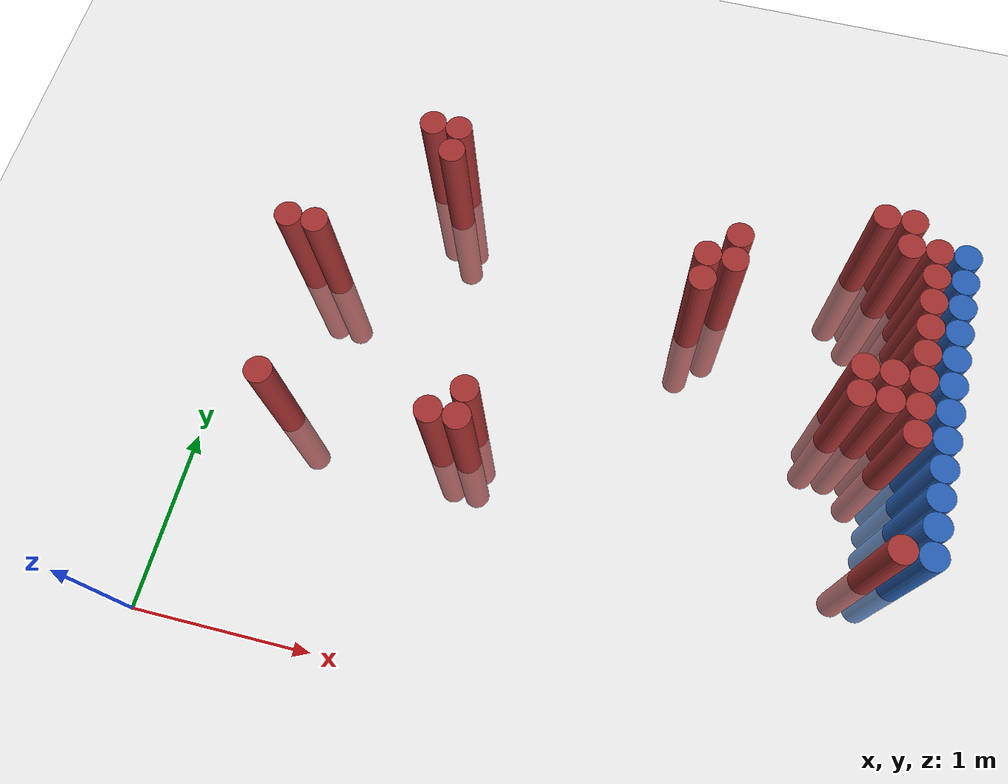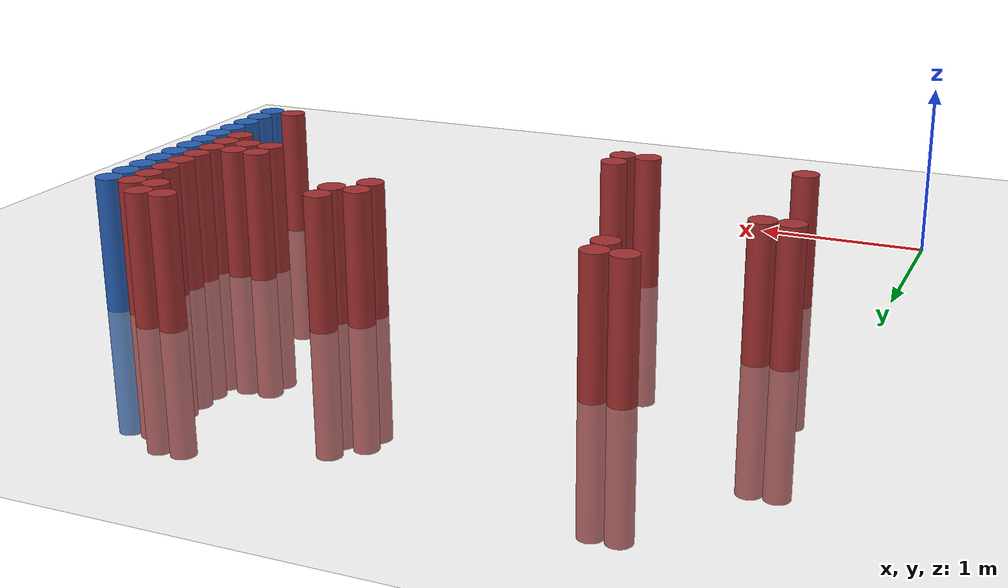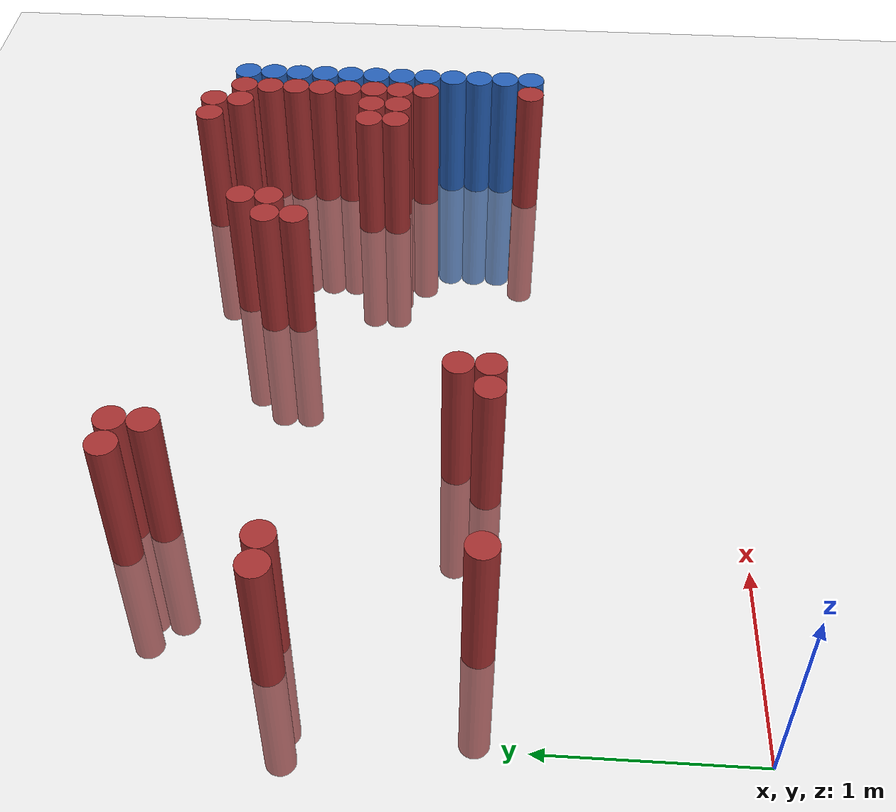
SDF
<sdf version="1.6">
 <world name="default">
  <model name="ground_plane">
   <static>1</static>
   <link name="link">
    <collision name="collision">
     <geometry><plane><normal>0 0 1</normal><size>100 100</size></plane></geometry>
     <surface><friction><ode><mu>100</mu><mu2>50</mu2></ode></friction></surface>
    </collision>
    <visual name="visual">
     <cast_shadows>0</cast_shadows>
     <geometry><plane><normal>0 0 1</normal><size>100 100</size></plane></geometry>
     <material>
      <script><uri>file://media/materials/scripts/gazebo.material</uri><name>Gazebo/Grey</name></script>
     </material>
    </visual>
   </link>
  </model>
  <model name="unit_cylinder_130">
   <static>1</static>
   <pose>3.925000 1.225000 0.000000 0.000000 0.000000 0.000000</pose>
   <link name="link">
    <inertial>
     <mass>1</mass>
     <inertia><ixx>0.145833</ixx><ixy>0</ixy><ixz>0</ixz><iyy>0.145833</iyy><iyz>0</iyz><izz>0.125</izz></inertia>
    </inertial>
    <collision name="collision">
     <geometry><cylinder><radius>0.075000</radius><length>1.5</length></cylinder></geometry>
    </collision>
    <visual name="visual">
     <geometry><cylinder><radius>0.075000</radius><length>1.5</length></cylinder></geometry>
     <material>
      <ambient>0.152000 0.379000 0.720000 1</ambient>
      <diffuse>0.152000 0.379000 0.720000 1</diffuse>
     </material>
     <material>
      <script><name>Gazebo/Grey</name><uri>file://media/materials/scripts/gazebo.material</uri></script>
     </material>
    </visual>
   </link>
  </model>
  <model name="unit_cylinder_132">
   <static>1</static>
   <pose>3.925000 1.375000 0.000000 0.000000 0.000000 0.000000</pose>
   <link name="link">
    <inertial>
     <mass>1</mass>
     <inertia><ixx>0.145833</ixx><ixy>0</ixy><ixz>0</ixz><iyy>0.145833</iyy><iyz>0</iyz><izz>0.125</izz></inertia>
    </inertial>
    <collision name="collision">
     <geometry><cylinder><radius>0.075000</radius><length>1.5</length></cylinder></geometry>
    </collision>
    <visual name="visual">
     <geometry><cylinder><radius>0.075000</radius><length>1.5</length></cylinder></geometry>
     <material>
      <ambient>0.152000 0.379000 0.720000 1</ambient>
      <diffuse>0.152000 0.379000 0.720000 1</diffuse>
     </material>
     <material>
      <script><name>Gazebo/Grey</name><uri>file://media/materials/scripts/gazebo.material</uri></script>
     </material>
    </visual>
   </link>
  </model>
  <model name="unit_cylinder_134">
   <static>1</static>
   <pose>3.925000 1.525000 0.000000 0.000000 0.000000 0.000000</pose>
   <link name="link">
    <inertial>
     <mass>1</mass>
     <inertia><ixx>0.145833</ixx><ixy>0</ixy><ixz>0</ixz><iyy>0.145833</iyy><iyz>0</iyz><izz>0.125</izz></inertia>
    </inertial>
    <collision name="collision">
     <geometry><cylinder><radius>0.075000</radius><length>1.5</length></cylinder></geometry>
    </collision>
    <visual name="visual">
     <geometry><cylinder><radius>0.075000</radius><length>1.5</length></cylinder></geometry>
     <material>
      <ambient>0.152000 0.379000 0.720000 1</ambient>
      <diffuse>0.152000 0.379000 0.720000 1</diffuse>
     </material>
     <material>
      <script><name>Gazebo/Grey</name><uri>file://media/materials/scripts/gazebo.material</uri></script>
     </material>
    </visual>
   </link>
  </model>
  <model name="unit_cylinder_136">
   <static>1</static>
   <pose>3.925000 1.675000 0.000000 0.000000 0.000000 0.000000</pose>
   <link name="link">
    <inertial>
     <mass>1</mass>
     <inertia><ixx>0.145833</ixx><ixy>0</ixy><ixz>0</ixz><iyy>0.145833</iyy><iyz>0</iyz><izz>0.125</izz></inertia>
    </inertial>
    <collision name="collision">
     <geometry><cylinder><radius>0.075000</radius><length>1.5</length></cylinder></geometry>
    </collision>
    <visual name="visual">
     <geometry><cylinder><radius>0.075000</radius><length>1.5</length></cylinder></geometry>
     <material>
      <ambient>0.152000 0.379000 0.720000 1</ambient>
      <diffuse>0.152000 0.379000 0.720000 1</diffuse>
     </material>
     <material>
      <script><name>Gazebo/Grey</name><uri>file://media/materials/scripts/gazebo.material</uri></script>
     </material>
    </visual>
   </link>
  </model>
  <model name="unit_cylinder_138">
   <static>1</static>
   <pose>3.925000 1.825000 0.000000 0.000000 0.000000 0.000000</pose>
   <link name="link">
    <inertial>
     <mass>1</mass>
     <inertia><ixx>0.145833</ixx><ixy>0</ixy><ixz>0</ixz><iyy>0.145833</iyy><iyz>0</iyz><izz>0.125</izz></inertia>
    </inertial>
    <collision name="collision">
     <geometry><cylinder><radius>0.075000</radius><length>1.5</length></cylinder></geometry>
    </collision>
    <visual name="visual">
     <geometry><cylinder><radius>0.075000</radius><length>1.5</length></cylinder></geometry>
     <material>
      <ambient>0.152000 0.379000 0.720000 1</ambient>
      <diffuse>0.152000 0.379000 0.720000 1</diffuse>
     </material>
     <material>
      <script><name>Gazebo/Grey</name><uri>file://media/materials/scripts/gazebo.material</uri></script>
     </material>
    </visual>
   </link>
  </model>
  <model name="unit_cylinder_140">
   <static>1</static>
   <pose>3.925000 1.975000 0.000000 0.000000 0.000000 0.000000</pose>
   <link name="link">
    <inertial>
     <mass>1</mass>
     <inertia><ixx>0.145833</ixx><ixy>0</ixy><ixz>0</ixz><iyy>0.145833</iyy><iyz>0</iyz><izz>0.125</izz></inertia>
    </inertial>
    <collision name="collision">
     <geometry><cylinder><radius>0.075000</radius><length>1.5</length></cylinder></geometry>
    </collision>
    <visual name="visual">
     <geometry><cylinder><radius>0.075000</radius><length>1.5</length></cylinder></geometry>
     <material>
      <ambient>0.152000 0.379000 0.720000 1</ambient>
      <diffuse>0.152000 0.379000 0.720000 1</diffuse>
     </material>
     <material>
      <script><name>Gazebo/Grey</name><uri>file://media/materials/scripts/gazebo.material</uri></script>
     </material>
    </visual>
   </link>
  </model>
  <model name="unit_cylinder_142">
   <static>1</static>
   <pose>3.925000 2.125000 0.000000 0.000000 0.000000 0.000000</pose>
   <link name="link">
    <inertial>
     <mass>1</mass>
     <inertia><ixx>0.145833</ixx><ixy>0</ixy><ixz>0</ixz><iyy>0.145833</iyy><iyz>0</iyz><izz>0.125</izz></inertia>
    </inertial>
    <collision name="collision">
     <geometry><cylinder><radius>0.075000</radius><length>1.5</length></cylinder></geometry>
    </collision>
    <visual name="visual">
     <geometry><cylinder><radius>0.075000</radius><length>1.5</length></cylinder></geometry>
     <material>
      <ambient>0.152000 0.379000 0.720000 1</ambient>
      <diffuse>0.152000 0.379000 0.720000 1</diffuse>
     </material>
     <material>
      <script><name>Gazebo/Grey</name><uri>file://media/materials/scripts/gazebo.material</uri></script>
     </material>
    </visual>
   </link>
  </model>
  <model name="unit_cylinder_144">
   <static>1</static>
   <pose>3.925000 2.275000 0.000000 0.000000 0.000000 0.000000</pose>
   <link name="link">
    <inertial>
     <mass>1</mass>
     <inertia><ixx>0.145833</ixx><ixy>0</ixy><ixz>0</ixz><iyy>0.145833</iyy><iyz>0</iyz><izz>0.125</izz></inertia>
    </inertial>
    <collision name="collision">
     <geometry><cylinder><radius>0.075000</radius><length>1.5</length></cylinder></geometry>
    </collision>
    <visual name="visual">
     <geometry><cylinder><radius>0.075000</radius><length>1.5</length></cylinder></geometry>
     <material>
      <ambient>0.152000 0.379000 0.720000 1</ambient>
      <diffuse>0.152000 0.379000 0.720000 1</diffuse>
     </material>
     <material>
      <script><name>Gazebo/Grey</name><uri>file://media/materials/scripts/gazebo.material</uri></script>
     </material>
    </visual>
   </link>
  </model>
  <model name="unit_cylinder_146">
   <static>1</static>
   <pose>3.925000 2.425000 0.000000 0.000000 0.000000 0.000000</pose>
   <link name="link">
    <inertial>
     <mass>1</mass>
     <inertia><ixx>0.145833</ixx><ixy>0</ixy><ixz>0</ixz><iyy>0.145833</iyy><iyz>0</iyz><izz>0.125</izz></inertia>
    </inertial>
    <collision name="collision">
     <geometry><cylinder><radius>0.075000</radius><length>1.5</length></cylinder></geometry>
    </collision>
    <visual name="visual">
     <geometry><cylinder><radius>0.075000</radius><length>1.5</length></cylinder></geometry>
     <material>
      <ambient>0.152000 0.379000 0.720000 1</ambient>
      <diffuse>0.152000 0.379000 0.720000 1</diffuse>
     </material>
     <material>
      <script><name>Gazebo/Grey</name><uri>file://media/materials/scripts/gazebo.material</uri></script>
     </material>
    </visual>
   </link>
  </model>
  <model name="unit_cylinder_148">
   <static>1</static>
   <pose>3.925000 2.575000 0.000000 0.000000 0.000000 0.000000</pose>
   <link name="link">
    <inertial>
     <mass>1</mass>
     <inertia><ixx>0.145833</ixx><ixy>0</ixy><ixz>0</ixz><iyy>0.145833</iyy><iyz>0</iyz><izz>0.125</izz></inertia>
    </inertial>
    <collision name="collision">
     <geometry><cylinder><radius>0.075000</radius><length>1.5</length></cylinder></geometry>
    </collision>
    <visual name="visual">
     <geometry><cylinder><radius>0.075000</radius><length>1.5</length></cylinder></geometry>
     <material>
      <ambient>0.152000 0.379000 0.720000 1</ambient>
      <diffuse>0.152000 0.379000 0.720000 1</diffuse>
     </material>
     <material>
      <script><name>Gazebo/Grey</name><uri>file://media/materials/scripts/gazebo.material</uri></script>
     </material>
    </visual>
   </link>
  </model>
  <model name="unit_cylinder_150">
   <static>1</static>
   <pose>3.925000 2.725000 0.000000 0.000000 0.000000 0.000000</pose>
   <link name="link">
    <inertial>
     <mass>1</mass>
     <inertia><ixx>0.145833</ixx><ixy>0</ixy><ixz>0</ixz><iyy>0.145833</iyy><iyz>0</iyz><izz>0.125</izz></inertia>
    </inertial>
    <collision name="collision">
     <geometry><cylinder><radius>0.075000</radius><length>1.5</length></cylinder></geometry>
    </collision>
    <visual name="visual">
     <geometry><cylinder><radius>0.075000</radius><length>1.5</length></cylinder></geometry>
     <material>
      <ambient>0.152000 0.379000 0.720000 1</ambient>
      <diffuse>0.152000 0.379000 0.720000 1</diffuse>
     </material>
     <material>
      <script><name>Gazebo/Grey</name><uri>file://media/materials/scripts/gazebo.material</uri></script>
     </material>
    </visual>
   </link>
  </model>
  <model name="unit_cylinder_371">
   <static>1</static>
   <pose>0.325000 2.125000 0.000000 0.000000 0.000000 0.000000</pose>
   <link name="link">
    <inertial>
     <mass>1</mass>
     <inertia><ixx>0.145833</ixx><ixy>0</ixy><ixz>0</ixz><iyy>0.145833</iyy><iyz>0</iyz><izz>0.125</izz></inertia>
    </inertial>
    <collision name="collision">
     <geometry><cylinder><radius>0.075000</radius><length>1.5</length></cylinder></geometry>
    </collision>
    <visual name="visual">
     <geometry><cylinder><radius>0.075000</radius><length>1.5</length></cylinder></geometry>
     <material>
      <ambient>0.648000 0.192000 0.192000 1</ambient>
      <diffuse>0.648000 0.192000 0.192000 1</diffuse>
     </material>
     <material>
      <script><name>Gazebo/Grey</name><uri>file://media/materials/scripts/gazebo.material</uri></script>
     </material>
    </visual>
   </link>
  </model>
  <model name="unit_cylinder_374">
   <static>1</static>
   <pose>0.475000 1.225000 0.000000 0.000000 0.000000 0.000000</pose>
   <link name="link">
    <inertial>
     <mass>1</mass>
     <inertia><ixx>0.145833</ixx><ixy>0</ixy><ixz>0</ixz><iyy>0.145833</iyy><iyz>0</iyz><izz>0.125</izz></inertia>
    </inertial>
    <collision name="collision">
     <geometry><cylinder><radius>0.075000</radius><length>1.5</length></cylinder></geometry>
    </collision>
    <visual name="visual">
     <geometry><cylinder><radius>0.075000</radius><length>1.5</length></cylinder></geometry>
     <material>
      <ambient>0.648000 0.192000 0.192000 1</ambient>
      <diffuse>0.648000 0.192000 0.192000 1</diffuse>
     </material>
     <material>
      <script><name>Gazebo/Grey</name><uri>file://media/materials/scripts/gazebo.material</uri></script>
     </material>
    </visual>
   </link>
  </model>
  <model name="unit_cylinder_375">
   <static>1</static>
   <pose>0.475000 2.125000 0.000000 0.000000 0.000000 0.000000</pose>
   <link name="link">
    <inertial>
     <mass>1</mass>
     <inertia><ixx>0.145833</ixx><ixy>0</ixy><ixz>0</ixz><iyy>0.145833</iyy><iyz>0</iyz><izz>0.125</izz></inertia>
    </inertial>
    <collision name="collision">
     <geometry><cylinder><radius>0.075000</radius><length>1.5</length></cylinder></geometry>
    </collision>
    <visual name="visual">
     <geometry><cylinder><radius>0.075000</radius><length>1.5</length></cylinder></geometry>
     <material>
      <ambient>0.648000 0.192000 0.192000 1</ambient>
      <diffuse>0.648000 0.192000 0.192000 1</diffuse>
     </material>
     <material>
      <script><name>Gazebo/Grey</name><uri>file://media/materials/scripts/gazebo.material</uri></script>
     </material>
    </visual>
   </link>
  </model>
  <model name="unit_cylinder_384">
   <static>1</static>
   <pose>0.925000 2.875000 0.000000 0.000000 0.000000 0.000000</pose>
   <link name="link">
    <inertial>
     <mass>1</mass>
     <inertia><ixx>0.145833</ixx><ixy>0</ixy><ixz>0</ixz><iyy>0.145833</iyy><iyz>0</iyz><izz>0.125</izz></inertia>
    </inertial>
    <collision name="collision">
     <geometry><cylinder><radius>0.075000</radius><length>1.5</length></cylinder></geometry>
    </collision>
    <visual name="visual">
     <geometry><cylinder><radius>0.075000</radius><length>1.5</length></cylinder></geometry>
     <material>
      <ambient>0.648000 0.192000 0.192000 1</ambient>
      <diffuse>0.648000 0.192000 0.192000 1</diffuse>
     </material>
     <material>
      <script><name>Gazebo/Grey</name><uri>file://media/materials/scripts/gazebo.material</uri></script>
     </material>
    </visual>
   </link>
  </model>
  <model name="unit_cylinder_392">
   <static>1</static>
   <pose>1.075000 2.725000 0.000000 0.000000 0.000000 0.000000</pose>
   <link name="link">
    <inertial>
     <mass>1</mass>
     <inertia><ixx>0.145833</ixx><ixy>0</ixy><ixz>0</ixz><iyy>0.145833</iyy><iyz>0</iyz><izz>0.125</izz></inertia>
    </inertial>
    <collision name="collision">
     <geometry><cylinder><radius>0.075000</radius><length>1.5</length></cylinder></geometry>
    </collision>
    <visual name="visual">
     <geometry><cylinder><radius>0.075000</radius><length>1.5</length></cylinder></geometry>
     <material>
      <ambient>0.648000 0.192000 0.192000 1</ambient>
      <diffuse>0.648000 0.192000 0.192000 1</diffuse>
     </material>
     <material>
      <script><name>Gazebo/Grey</name><uri>file://media/materials/scripts/gazebo.material</uri></script>
     </material>
    </visual>
   </link>
  </model>
  <model name="unit_cylinder_393">
   <static>1</static>
   <pose>1.075000 2.875000 0.000000 0.000000 0.000000 0.000000</pose>
   <link name="link">
    <inertial>
     <mass>1</mass>
     <inertia><ixx>0.145833</ixx><ixy>0</ixy><ixz>0</ixz><iyy>0.145833</iyy><iyz>0</iyz><izz>0.125</izz></inertia>
    </inertial>
    <collision name="collision">
     <geometry><cylinder><radius>0.075000</radius><length>1.5</length></cylinder></geometry>
    </collision>
    <visual name="visual">
     <geometry><cylinder><radius>0.075000</radius><length>1.5</length></cylinder></geometry>
     <material>
      <ambient>0.648000 0.192000 0.192000 1</ambient>
      <diffuse>0.648000 0.192000 0.192000 1</diffuse>
     </material>
     <material>
      <script><name>Gazebo/Grey</name><uri>file://media/materials/scripts/gazebo.material</uri></script>
     </material>
    </visual>
   </link>
  </model>
  <model name="unit_cylinder_402">
   <static>1</static>
   <pose>1.375000 1.225000 0.000000 0.000000 0.000000 0.000000</pose>
   <link name="link">
    <inertial>
     <mass>1</mass>
     <inertia><ixx>0.145833</ixx><ixy>0</ixy><ixz>0</ixz><iyy>0.145833</iyy><iyz>0</iyz><izz>0.125</izz></inertia>
    </inertial>
    <collision name="collision">
     <geometry><cylinder><radius>0.075000</radius><length>1.5</length></cylinder></geometry>
    </collision>
    <visual name="visual">
     <geometry><cylinder><radius>0.075000</radius><length>1.5</length></cylinder></geometry>
     <material>
      <ambient>0.648000 0.192000 0.192000 1</ambient>
      <diffuse>0.648000 0.192000 0.192000 1</diffuse>
     </material>
     <material>
      <script><name>Gazebo/Grey</name><uri>file://media/materials/scripts/gazebo.material</uri></script>
     </material>
    </visual>
   </link>
  </model>
  <model name="unit_cylinder_406">
   <static>1</static>
   <pose>1.525000 1.225000 0.000000 0.000000 0.000000 0.000000</pose>
   <link name="link">
    <inertial>
     <mass>1</mass>
     <inertia><ixx>0.145833</ixx><ixy>0</ixy><ixz>0</ixz><iyy>0.145833</iyy><iyz>0</iyz><izz>0.125</izz></inertia>
    </inertial>
    <collision name="collision">
     <geometry><cylinder><radius>0.075000</radius><length>1.5</length></cylinder></geometry>
    </collision>
    <visual name="visual">
     <geometry><cylinder><radius>0.075000</radius><length>1.5</length></cylinder></geometry>
     <material>
      <ambient>0.648000 0.192000 0.192000 1</ambient>
      <diffuse>0.648000 0.192000 0.192000 1</diffuse>
     </material>
     <material>
      <script><name>Gazebo/Grey</name><uri>file://media/materials/scripts/gazebo.material</uri></script>
     </material>
    </visual>
   </link>
  </model>
  <model name="unit_cylinder_407">
   <static>1</static>
   <pose>1.525000 1.375000 0.000000 0.000000 0.000000 0.000000</pose>
   <link name="link">
    <inertial>
     <mass>1</mass>
     <inertia><ixx>0.145833</ixx><ixy>0</ixy><ixz>0</ixz><iyy>0.145833</iyy><iyz>0</iyz><izz>0.125</izz></inertia>
    </inertial>
    <collision name="collision">
     <geometry><cylinder><radius>0.075000</radius><length>1.5</length></cylinder></geometry>
    </collision>
    <visual name="visual">
     <geometry><cylinder><radius>0.075000</radius><length>1.5</length></cylinder></geometry>
     <material>
      <ambient>0.648000 0.192000 0.192000 1</ambient>
      <diffuse>0.648000 0.192000 0.192000 1</diffuse>
     </material>
     <material>
      <script><name>Gazebo/Grey</name><uri>file://media/materials/scripts/gazebo.material</uri></script>
     </material>
    </visual>
   </link>
  </model>
  <model name="unit_cylinder_448">
   <static>1</static>
   <pose>2.575000 2.275000 0.000000 0.000000 0.000000 0.000000</pose>
   <link name="link">
    <inertial>
     <mass>1</mass>
     <inertia><ixx>0.145833</ixx><ixy>0</ixy><ixz>0</ixz><iyy>0.145833</iyy><iyz>0</iyz><izz>0.125</izz></inertia>
    </inertial>
    <collision name="collision">
     <geometry><cylinder><radius>0.075000</radius><length>1.5</length></cylinder></geometry>
    </collision>
    <visual name="visual">
     <geometry><cylinder><radius>0.075000</radius><length>1.5</length></cylinder></geometry>
     <material>
      <ambient>0.648000 0.192000 0.192000 1</ambient>
      <diffuse>0.648000 0.192000 0.192000 1</diffuse>
     </material>
     <material>
      <script><name>Gazebo/Grey</name><uri>file://media/materials/scripts/gazebo.material</uri></script>
     </material>
    </visual>
   </link>
  </model>
  <model name="unit_cylinder_449">
   <static>1</static>
   <pose>2.575000 2.425000 0.000000 0.000000 0.000000 0.000000</pose>
   <link name="link">
    <inertial>
     <mass>1</mass>
     <inertia><ixx>0.145833</ixx><ixy>0</ixy><ixz>0</ixz><iyy>0.145833</iyy><iyz>0</iyz><izz>0.125</izz></inertia>
    </inertial>
    <collision name="collision">
     <geometry><cylinder><radius>0.075000</radius><length>1.5</length></cylinder></geometry>
    </collision>
    <visual name="visual">
     <geometry><cylinder><radius>0.075000</radius><length>1.5</length></cylinder></geometry>
     <material>
      <ambient>0.648000 0.192000 0.192000 1</ambient>
      <diffuse>0.648000 0.192000 0.192000 1</diffuse>
     </material>
     <material>
      <script><name>Gazebo/Grey</name><uri>file://media/materials/scripts/gazebo.material</uri></script>
     </material>
    </visual>
   </link>
  </model>
  <model name="unit_cylinder_455">
   <static>1</static>
   <pose>2.725000 2.425000 0.000000 0.000000 0.000000 0.000000</pose>
   <link name="link">
    <inertial>
     <mass>1</mass>
     <inertia><ixx>0.145833</ixx><ixy>0</ixy><ixz>0</ixz><iyy>0.145833</iyy><iyz>0</iyz><izz>0.125</izz></inertia>
    </inertial>
    <collision name="collision">
     <geometry><cylinder><radius>0.075000</radius><length>1.5</length></cylinder></geometry>
    </collision>
    <visual name="visual">
     <geometry><cylinder><radius>0.075000</radius><length>1.5</length></cylinder></geometry>
     <material>
      <ambient>0.648000 0.192000 0.192000 1</ambient>
      <diffuse>0.648000 0.192000 0.192000 1</diffuse>
     </material>
     <material>
      <script><name>Gazebo/Grey</name><uri>file://media/materials/scripts/gazebo.material</uri></script>
     </material>
    </visual>
   </link>
  </model>
  <model name="unit_cylinder_456">
   <static>1</static>
   <pose>2.725000 2.575000 0.000000 0.000000 0.000000 0.000000</pose>
   <link name="link">
    <inertial>
     <mass>1</mass>
     <inertia><ixx>0.145833</ixx><ixy>0</ixy><ixz>0</ixz><iyy>0.145833</iyy><iyz>0</iyz><izz>0.125</izz></inertia>
    </inertial>
    <collision name="collision">
     <geometry><cylinder><radius>0.075000</radius><length>1.5</length></cylinder></geometry>
    </collision>
    <visual name="visual">
     <geometry><cylinder><radius>0.075000</radius><length>1.5</length></cylinder></geometry>
     <material>
      <ambient>0.648000 0.192000 0.192000 1</ambient>
      <diffuse>0.648000 0.192000 0.192000 1</diffuse>
     </material>
     <material>
      <script><name>Gazebo/Grey</name><uri>file://media/materials/scripts/gazebo.material</uri></script>
     </material>
    </visual>
   </link>
  </model>
  <model name="unit_cylinder_471">
   <static>1</static>
   <pose>3.475000 1.825000 0.000000 0.000000 0.000000 0.000000</pose>
   <link name="link">
    <inertial>
     <mass>1</mass>
     <inertia><ixx>0.145833</ixx><ixy>0</ixy><ixz>0</ixz><iyy>0.145833</iyy><iyz>0</iyz><izz>0.125</izz></inertia>
    </inertial>
    <collision name="collision">
     <geometry><cylinder><radius>0.075000</radius><length>1.5</length></cylinder></geometry>
    </collision>
    <visual name="visual">
     <geometry><cylinder><radius>0.075000</radius><length>1.5</length></cylinder></geometry>
     <material>
      <ambient>0.648000 0.192000 0.192000 1</ambient>
      <diffuse>0.648000 0.192000 0.192000 1</diffuse>
     </material>
     <material>
      <script><name>Gazebo/Grey</name><uri>file://media/materials/scripts/gazebo.material</uri></script>
     </material>
    </visual>
   </link>
  </model>
  <model name="unit_cylinder_472">
   <static>1</static>
   <pose>3.475000 1.975000 0.000000 0.000000 0.000000 0.000000</pose>
   <link name="link">
    <inertial>
     <mass>1</mass>
     <inertia><ixx>0.145833</ixx><ixy>0</ixy><ixz>0</ixz><iyy>0.145833</iyy><iyz>0</iyz><izz>0.125</izz></inertia>
    </inertial>
    <collision name="collision">
     <geometry><cylinder><radius>0.075000</radius><length>1.5</length></cylinder></geometry>
    </collision>
    <visual name="visual">
     <geometry><cylinder><radius>0.075000</radius><length>1.5</length></cylinder></geometry>
     <material>
      <ambient>0.648000 0.192000 0.192000 1</ambient>
      <diffuse>0.648000 0.192000 0.192000 1</diffuse>
     </material>
     <material>
      <script><name>Gazebo/Grey</name><uri>file://media/materials/scripts/gazebo.material</uri></script>
     </material>
    </visual>
   </link>
  </model>
  <model name="unit_cylinder_473">
   <static>1</static>
   <pose>3.475000 2.875000 0.000000 0.000000 0.000000 0.000000</pose>
   <link name="link">
    <inertial>
     <mass>1</mass>
     <inertia><ixx>0.145833</ixx><ixy>0</ixy><ixz>0</ixz><iyy>0.145833</iyy><iyz>0</iyz><izz>0.125</izz></inertia>
    </inertial>
    <collision name="collision">
     <geometry><cylinder><radius>0.075000</radius><length>1.5</length></cylinder></geometry>
    </collision>
    <visual name="visual">
     <geometry><cylinder><radius>0.075000</radius><length>1.5</length></cylinder></geometry>
     <material>
      <ambient>0.648000 0.192000 0.192000 1</ambient>
      <diffuse>0.648000 0.192000 0.192000 1</diffuse>
     </material>
     <material>
      <script><name>Gazebo/Grey</name><uri>file://media/materials/scripts/gazebo.material</uri></script>
     </material>
    </visual>
   </link>
  </model>
  <model name="unit_cylinder_480">
   <static>1</static>
   <pose>3.625000 1.825000 0.000000 0.000000 0.000000 0.000000</pose>
   <link name="link">
    <inertial>
     <mass>1</mass>
     <inertia><ixx>0.145833</ixx><ixy>0</ixy><ixz>0</ixz><iyy>0.145833</iyy><iyz>0</iyz><izz>0.125</izz></inertia>
    </inertial>
    <collision name="collision">
     <geometry><cylinder><radius>0.075000</radius><length>1.5</length></cylinder></geometry>
    </collision>
    <visual name="visual">
     <geometry><cylinder><radius>0.075000</radius><length>1.5</length></cylinder></geometry>
     <material>
      <ambient>0.648000 0.192000 0.192000 1</ambient>
      <diffuse>0.648000 0.192000 0.192000 1</diffuse>
     </material>
     <material>
      <script><name>Gazebo/Grey</name><uri>file://media/materials/scripts/gazebo.material</uri></script>
     </material>
    </visual>
   </link>
  </model>
  <model name="unit_cylinder_481">
   <static>1</static>
   <pose>3.625000 1.975000 0.000000 0.000000 0.000000 0.000000</pose>
   <link name="link">
    <inertial>
     <mass>1</mass>
     <inertia><ixx>0.145833</ixx><ixy>0</ixy><ixz>0</ixz><iyy>0.145833</iyy><iyz>0</iyz><izz>0.125</izz></inertia>
    </inertial>
    <collision name="collision">
     <geometry><cylinder><radius>0.075000</radius><length>1.5</length></cylinder></geometry>
    </collision>
    <visual name="visual">
     <geometry><cylinder><radius>0.075000</radius><length>1.5</length></cylinder></geometry>
     <material>
      <ambient>0.648000 0.192000 0.192000 1</ambient>
      <diffuse>0.648000 0.192000 0.192000 1</diffuse>
     </material>
     <material>
      <script><name>Gazebo/Grey</name><uri>file://media/materials/scripts/gazebo.material</uri></script>
     </material>
    </visual>
   </link>
  </model>
  <model name="unit_cylinder_482">
   <static>1</static>
   <pose>3.625000 2.725000 0.000000 0.000000 0.000000 0.000000</pose>
   <link name="link">
    <inertial>
     <mass>1</mass>
     <inertia><ixx>0.145833</ixx><ixy>0</ixy><ixz>0</ixz><iyy>0.145833</iyy><iyz>0</iyz><izz>0.125</izz></inertia>
    </inertial>
    <collision name="collision">
     <geometry><cylinder><radius>0.075000</radius><length>1.5</length></cylinder></geometry>
    </collision>
    <visual name="visual">
     <geometry><cylinder><radius>0.075000</radius><length>1.5</length></cylinder></geometry>
     <material>
      <ambient>0.648000 0.192000 0.192000 1</ambient>
      <diffuse>0.648000 0.192000 0.192000 1</diffuse>
     </material>
     <material>
      <script><name>Gazebo/Grey</name><uri>file://media/materials/scripts/gazebo.material</uri></script>
     </material>
    </visual>
   </link>
  </model>
  <model name="unit_cylinder_483">
   <static>1</static>
   <pose>3.625000 2.875000 0.000000 0.000000 0.000000 0.000000</pose>
   <link name="link">
    <inertial>
     <mass>1</mass>
     <inertia><ixx>0.145833</ixx><ixy>0</ixy><ixz>0</ixz><iyy>0.145833</iyy><iyz>0</iyz><izz>0.125</izz></inertia>
    </inertial>
    <collision name="collision">
     <geometry><cylinder><radius>0.075000</radius><length>1.5</length></cylinder></geometry>
    </collision>
    <visual name="visual">
     <geometry><cylinder><radius>0.075000</radius><length>1.5</length></cylinder></geometry>
     <material>
      <ambient>0.648000 0.192000 0.192000 1</ambient>
      <diffuse>0.648000 0.192000 0.192000 1</diffuse>
     </material>
     <material>
      <script><name>Gazebo/Grey</name><uri>file://media/materials/scripts/gazebo.material</uri></script>
     </material>
    </visual>
   </link>
  </model>
  <model name="unit_cylinder_499">
   <static>1</static>
   <pose>3.775000 1.075000 0.000000 0.000000 0.000000 0.000000</pose>
   <link name="link">
    <inertial>
     <mass>1</mass>
     <inertia><ixx>0.145833</ixx><ixy>0</ixy><ixz>0</ixz><iyy>0.145833</iyy><iyz>0</iyz><izz>0.125</izz></inertia>
    </inertial>
    <collision name="collision">
     <geometry><cylinder><radius>0.075000</radius><length>1.5</length></cylinder></geometry>
    </collision>
    <visual name="visual">
     <geometry><cylinder><radius>0.075000</radius><length>1.5</length></cylinder></geometry>
     <material>
      <ambient>0.648000 0.192000 0.192000 1</ambient>
      <diffuse>0.648000 0.192000 0.192000 1</diffuse>
     </material>
     <material>
      <script><name>Gazebo/Grey</name><uri>file://media/materials/scripts/gazebo.material</uri></script>
     </material>
    </visual>
   </link>
  </model>
  <model name="unit_cylinder_500">
   <static>1</static>
   <pose>3.775000 1.675000 0.000000 0.000000 0.000000 0.000000</pose>
   <link name="link">
    <inertial>
     <mass>1</mass>
     <inertia><ixx>0.145833</ixx><ixy>0</ixy><ixz>0</ixz><iyy>0.145833</iyy><iyz>0</iyz><izz>0.125</izz></inertia>
    </inertial>
    <collision name="collision">
     <geometry><cylinder><radius>0.075000</radius><length>1.5</length></cylinder></geometry>
    </collision>
    <visual name="visual">
     <geometry><cylinder><radius>0.075000</radius><length>1.5</length></cylinder></geometry>
     <material>
      <ambient>0.648000 0.192000 0.192000 1</ambient>
      <diffuse>0.648000 0.192000 0.192000 1</diffuse>
     </material>
     <material>
      <script><name>Gazebo/Grey</name><uri>file://media/materials/scripts/gazebo.material</uri></script>
     </material>
    </visual>
   </link>
  </model>
  <model name="unit_cylinder_501">
   <static>1</static>
   <pose>3.775000 1.825000 0.000000 0.000000 0.000000 0.000000</pose>
   <link name="link">
    <inertial>
     <mass>1</mass>
     <inertia><ixx>0.145833</ixx><ixy>0</ixy><ixz>0</ixz><iyy>0.145833</iyy><iyz>0</iyz><izz>0.125</izz></inertia>
    </inertial>
    <collision name="collision">
     <geometry><cylinder><radius>0.075000</radius><length>1.5</length></cylinder></geometry>
    </collision>
    <visual name="visual">
     <geometry><cylinder><radius>0.075000</radius><length>1.5</length></cylinder></geometry>
     <material>
      <ambient>0.648000 0.192000 0.192000 1</ambient>
      <diffuse>0.648000 0.192000 0.192000 1</diffuse>
     </material>
     <material>
      <script><name>Gazebo/Grey</name><uri>file://media/materials/scripts/gazebo.material</uri></script>
     </material>
    </visual>
   </link>
  </model>
  <model name="unit_cylinder_502">
   <static>1</static>
   <pose>3.775000 1.975000 0.000000 0.000000 0.000000 0.000000</pose>
   <link name="link">
    <inertial>
     <mass>1</mass>
     <inertia><ixx>0.145833</ixx><ixy>0</ixy><ixz>0</ixz><iyy>0.145833</iyy><iyz>0</iyz><izz>0.125</izz></inertia>
    </inertial>
    <collision name="collision">
     <geometry><cylinder><radius>0.075000</radius><length>1.5</length></cylinder></geometry>
    </collision>
    <visual name="visual">
     <geometry><cylinder><radius>0.075000</radius><length>1.5</length></cylinder></geometry>
     <material>
      <ambient>0.648000 0.192000 0.192000 1</ambient>
      <diffuse>0.648000 0.192000 0.192000 1</diffuse>
     </material>
     <material>
      <script><name>Gazebo/Grey</name><uri>file://media/materials/scripts/gazebo.material</uri></script>
     </material>
    </visual>
   </link>
  </model>
  <model name="unit_cylinder_503">
   <static>1</static>
   <pose>3.775000 2.125000 0.000000 0.000000 0.000000 0.000000</pose>
   <link name="link">
    <inertial>
     <mass>1</mass>
     <inertia><ixx>0.145833</ixx><ixy>0</ixy><ixz>0</ixz><iyy>0.145833</iyy><iyz>0</iyz><izz>0.125</izz></inertia>
    </inertial>
    <collision name="collision">
     <geometry><cylinder><radius>0.075000</radius><length>1.5</length></cylinder></geometry>
    </collision>
    <visual name="visual">
     <geometry><cylinder><radius>0.075000</radius><length>1.5</length></cylinder></geometry>
     <material>
      <ambient>0.648000 0.192000 0.192000 1</ambient>
      <diffuse>0.648000 0.192000 0.192000 1</diffuse>
     </material>
     <material>
      <script><name>Gazebo/Grey</name><uri>file://media/materials/scripts/gazebo.material</uri></script>
     </material>
    </visual>
   </link>
  </model>
  <model name="unit_cylinder_504">
   <static>1</static>
   <pose>3.775000 2.275000 0.000000 0.000000 0.000000 0.000000</pose>
   <link name="link">
    <inertial>
     <mass>1</mass>
     <inertia><ixx>0.145833</ixx><ixy>0</ixy><ixz>0</ixz><iyy>0.145833</iyy><iyz>0</iyz><izz>0.125</izz></inertia>
    </inertial>
    <collision name="collision">
     <geometry><cylinder><radius>0.075000</radius><length>1.5</length></cylinder></geometry>
    </collision>
    <visual name="visual">
     <geometry><cylinder><radius>0.075000</radius><length>1.5</length></cylinder></geometry>
     <material>
      <ambient>0.648000 0.192000 0.192000 1</ambient>
      <diffuse>0.648000 0.192000 0.192000 1</diffuse>
     </material>
     <material>
      <script><name>Gazebo/Grey</name><uri>file://media/materials/scripts/gazebo.material</uri></script>
     </material>
    </visual>
   </link>
  </model>
  <model name="unit_cylinder_505">
   <static>1</static>
   <pose>3.775000 2.425000 0.000000 0.000000 0.000000 0.000000</pose>
   <link name="link">
    <inertial>
     <mass>1</mass>
     <inertia><ixx>0.145833</ixx><ixy>0</ixy><ixz>0</ixz><iyy>0.145833</iyy><iyz>0</iyz><izz>0.125</izz></inertia>
    </inertial>
    <collision name="collision">
     <geometry><cylinder><radius>0.075000</radius><length>1.5</length></cylinder></geometry>
    </collision>
    <visual name="visual">
     <geometry><cylinder><radius>0.075000</radius><length>1.5</length></cylinder></geometry>
     <material>
      <ambient>0.648000 0.192000 0.192000 1</ambient>
      <diffuse>0.648000 0.192000 0.192000 1</diffuse>
     </material>
     <material>
      <script><name>Gazebo/Grey</name><uri>file://media/materials/scripts/gazebo.material</uri></script>
     </material>
    </visual>
   </link>
  </model>
  <model name="unit_cylinder_506">
   <static>1</static>
   <pose>3.775000 2.575000 0.000000 0.000000 0.000000 0.000000</pose>
   <link name="link">
    <inertial>
     <mass>1</mass>
     <inertia><ixx>0.145833</ixx><ixy>0</ixy><ixz>0</ixz><iyy>0.145833</iyy><iyz>0</iyz><izz>0.125</izz></inertia>
    </inertial>
    <collision name="collision">
     <geometry><cylinder><radius>0.075000</radius><length>1.5</length></cylinder></geometry>
    </collision>
    <visual name="visual">
     <geometry><cylinder><radius>0.075000</radius><length>1.5</length></cylinder></geometry>
     <material>
      <ambient>0.648000 0.192000 0.192000 1</ambient>
      <diffuse>0.648000 0.192000 0.192000 1</diffuse>
     </material>
     <material>
      <script><name>Gazebo/Grey</name><uri>file://media/materials/scripts/gazebo.material</uri></script>
     </material>
    </visual>
   </link>
  </model>
  <model name="unit_cylinder_507">
   <static>1</static>
   <pose>3.775000 2.725000 0.000000 0.000000 0.000000 0.000000</pose>
   <link name="link">
    <inertial>
     <mass>1</mass>
     <inertia><ixx>0.145833</ixx><ixy>0</ixy><ixz>0</ixz><iyy>0.145833</iyy><iyz>0</iyz><izz>0.125</izz></inertia>
    </inertial>
    <collision name="collision">
     <geometry><cylinder><radius>0.075000</radius><length>1.5</length></cylinder></geometry>
    </collision>
    <visual name="visual">
     <geometry><cylinder><radius>0.075000</radius><length>1.5</length></cylinder></geometry>
     <material>
      <ambient>0.648000 0.192000 0.192000 1</ambient>
      <diffuse>0.648000 0.192000 0.192000 1</diffuse>
     </material>
     <material>
      <script><name>Gazebo/Grey</name><uri>file://media/materials/scripts/gazebo.material</uri></script>
     </material>
    </visual>
   </link>
  </model>
  <model name="unit_cylinder_538">
   <static>1</static>
   <pose>3.925000 1.075000 0.000000 0.000000 0.000000 0.000000</pose>
   <link name="link">
    <inertial>
     <mass>1</mass>
     <inertia><ixx>0.145833</ixx><ixy>0</ixy><ixz>0</ixz><iyy>0.145833</iyy><iyz>0</iyz><izz>0.125</izz></inertia>
    </inertial>
    <collision name="collision">
     <geometry><cylinder><radius>0.075000</radius><length>1.5</length></cylinder></geometry>
    </collision>
    <visual name="visual">
     <geometry><cylinder><radius>0.075000</radius><length>1.5</length></cylinder></geometry>
     <material>
      <ambient>0.152000 0.379000 0.720000 1</ambient>
      <diffuse>0.152000 0.379000 0.720000 1</diffuse>
     </material>
     <material>
      <script><name>Gazebo/Grey</name><uri>file://media/materials/scripts/gazebo.material</uri></script>
     </material>
    </visual>
   </link>
  </model>
  <model name="unit_cylinder_539">
   <static>1</static>
   <pose>3.925000 1.225000 0.000000 0.000000 0.000000 0.000000</pose>
   <link name="link">
    <inertial>
     <mass>1</mass>
     <inertia><ixx>0.145833</ixx><ixy>0</ixy><ixz>0</ixz><iyy>0.145833</iyy><iyz>0</iyz><izz>0.125</izz></inertia>
    </inertial>
    <collision name="collision">
     <geometry><cylinder><radius>0.075000</radius><length>1.5</length></cylinder></geometry>
    </collision>
    <visual name="visual">
     <geometry><cylinder><radius>0.075000</radius><length>1.5</length></cylinder></geometry>
     <material>
      <ambient>0.152000 0.379000 0.720000 1</ambient>
      <diffuse>0.152000 0.379000 0.720000 1</diffuse>
     </material>
     <material>
      <script><name>Gazebo/Grey</name><uri>file://media/materials/scripts/gazebo.material</uri></script>
     </material>
    </visual>
   </link>
  </model>
  <model name="unit_cylinder_540">
   <static>1</static>
   <pose>3.925000 1.375000 0.000000 0.000000 0.000000 0.000000</pose>
   <link name="link">
    <inertial>
     <mass>1</mass>
     <inertia><ixx>0.145833</ixx><ixy>0</ixy><ixz>0</ixz><iyy>0.145833</iyy><iyz>0</iyz><izz>0.125</izz></inertia>
    </inertial>
    <collision name="collision">
     <geometry><cylinder><radius>0.075000</radius><length>1.5</length></cylinder></geometry>
    </collision>
    <visual name="visual">
     <geometry><cylinder><radius>0.075000</radius><length>1.5</length></cylinder></geometry>
     <material>
      <ambient>0.152000 0.379000 0.720000 1</ambient>
      <diffuse>0.152000 0.379000 0.720000 1</diffuse>
     </material>
     <material>
      <script><name>Gazebo/Grey</name><uri>file://media/materials/scripts/gazebo.material</uri></script>
     </material>
    </visual>
   </link>
  </model>
  <model name="unit_cylinder_541">
   <static>1</static>
   <pose>3.925000 1.525000 0.000000 0.000000 0.000000 0.000000</pose>
   <link name="link">
    <inertial>
     <mass>1</mass>
     <inertia><ixx>0.145833</ixx><ixy>0</ixy><ixz>0</ixz><iyy>0.145833</iyy><iyz>0</iyz><izz>0.125</izz></inertia>
    </inertial>
    <collision name="collision">
     <geometry><cylinder><radius>0.075000</radius><length>1.5</length></cylinder></geometry>
    </collision>
    <visual name="visual">
     <geometry><cylinder><radius>0.075000</radius><length>1.5</length></cylinder></geometry>
     <material>
      <ambient>0.152000 0.379000 0.720000 1</ambient>
      <diffuse>0.152000 0.379000 0.720000 1</diffuse>
     </material>
     <material>
      <script><name>Gazebo/Grey</name><uri>file://media/materials/scripts/gazebo.material</uri></script>
     </material>
    </visual>
   </link>
  </model>
  <model name="unit_cylinder_542">
   <static>1</static>
   <pose>3.925000 1.675000 0.000000 0.000000 0.000000 0.000000</pose>
   <link name="link">
    <inertial>
     <mass>1</mass>
     <inertia><ixx>0.145833</ixx><ixy>0</ixy><ixz>0</ixz><iyy>0.145833</iyy><iyz>0</iyz><izz>0.125</izz></inertia>
    </inertial>
    <collision name="collision">
     <geometry><cylinder><radius>0.075000</radius><length>1.5</length></cylinder></geometry>
    </collision>
    <visual name="visual">
     <geometry><cylinder><radius>0.075000</radius><length>1.5</length></cylinder></geometry>
     <material>
      <ambient>0.152000 0.379000 0.720000 1</ambient>
      <diffuse>0.152000 0.379000 0.720000 1</diffuse>
     </material>
     <material>
      <script><name>Gazebo/Grey</name><uri>file://media/materials/scripts/gazebo.material</uri></script>
     </material>
    </visual>
   </link>
  </model>
  <model name="unit_cylinder_543">
   <static>1</static>
   <pose>3.925000 1.825000 0.000000 0.000000 0.000000 0.000000</pose>
   <link name="link">
    <inertial>
     <mass>1</mass>
     <inertia><ixx>0.145833</ixx><ixy>0</ixy><ixz>0</ixz><iyy>0.145833</iyy><iyz>0</iyz><izz>0.125</izz></inertia>
    </inertial>
    <collision name="collision">
     <geometry><cylinder><radius>0.075000</radius><length>1.5</length></cylinder></geometry>
    </collision>
    <visual name="visual">
     <geometry><cylinder><radius>0.075000</radius><length>1.5</length></cylinder></geometry>
     <material>
      <ambient>0.152000 0.379000 0.720000 1</ambient>
      <diffuse>0.152000 0.379000 0.720000 1</diffuse>
     </material>
     <material>
      <script><name>Gazebo/Grey</name><uri>file://media/materials/scripts/gazebo.material</uri></script>
     </material>
    </visual>
   </link>
  </model>
  <model name="unit_cylinder_544">
   <static>1</static>
   <pose>3.925000 1.975000 0.000000 0.000000 0.000000 0.000000</pose>
   <link name="link">
    <inertial>
     <mass>1</mass>
     <inertia><ixx>0.145833</ixx><ixy>0</ixy><ixz>0</ixz><iyy>0.145833</iyy><iyz>0</iyz><izz>0.125</izz></inertia>
    </inertial>
    <collision name="collision">
     <geometry><cylinder><radius>0.075000</radius><length>1.5</length></cylinder></geometry>
    </collision>
    <visual name="visual">
     <geometry><cylinder><radius>0.075000</radius><length>1.5</length></cylinder></geometry>
     <material>
      <ambient>0.152000 0.379000 0.720000 1</ambient>
      <diffuse>0.152000 0.379000 0.720000 1</diffuse>
     </material>
     <material>
      <script><name>Gazebo/Grey</name><uri>file://media/materials/scripts/gazebo.material</uri></script>
     </material>
    </visual>
   </link>
  </model>
  <model name="unit_cylinder_545">
   <static>1</static>
   <pose>3.925000 2.125000 0.000000 0.000000 0.000000 0.000000</pose>
   <link name="link">
    <inertial>
     <mass>1</mass>
     <inertia><ixx>0.145833</ixx><ixy>0</ixy><ixz>0</ixz><iyy>0.145833</iyy><iyz>0</iyz><izz>0.125</izz></inertia>
    </inertial>
    <collision name="collision">
     <geometry><cylinder><radius>0.075000</radius><length>1.5</length></cylinder></geometry>
    </collision>
    <visual name="visual">
     <geometry><cylinder><radius>0.075000</radius><length>1.5</length></cylinder></geometry>
     <material>
      <ambient>0.152000 0.379000 0.720000 1</ambient>
      <diffuse>0.152000 0.379000 0.720000 1</diffuse>
     </material>
     <material>
      <script><name>Gazebo/Grey</name><uri>file://media/materials/scripts/gazebo.material</uri></script>
     </material>
    </visual>
   </link>
  </model>
  <model name="unit_cylinder_546">
   <static>1</static>
   <pose>3.925000 2.275000 0.000000 0.000000 0.000000 0.000000</pose>
   <link name="link">
    <inertial>
     <mass>1</mass>
     <inertia><ixx>0.145833</ixx><ixy>0</ixy><ixz>0</ixz><iyy>0.145833</iyy><iyz>0</iyz><izz>0.125</izz></inertia>
    </inertial>
    <collision name="collision">
     <geometry><cylinder><radius>0.075000</radius><length>1.5</length></cylinder></geometry>
    </collision>
    <visual name="visual">
     <geometry><cylinder><radius>0.075000</radius><length>1.5</length></cylinder></geometry>
     <material>
      <ambient>0.152000 0.379000 0.720000 1</ambient>
      <diffuse>0.152000 0.379000 0.720000 1</diffuse>
     </material>
     <material>
      <script><name>Gazebo/Grey</name><uri>file://media/materials/scripts/gazebo.material</uri></script>
     </material>
    </visual>
   </link>
  </model>
  <model name="unit_cylinder_547">
   <static>1</static>
   <pose>3.925000 2.425000 0.000000 0.000000 0.000000 0.000000</pose>
   <link name="link">
    <inertial>
     <mass>1</mass>
     <inertia><ixx>0.145833</ixx><ixy>0</ixy><ixz>0</ixz><iyy>0.145833</iyy><iyz>0</iyz><izz>0.125</izz></inertia>
    </inertial>
    <collision name="collision">
     <geometry><cylinder><radius>0.075000</radius><length>1.5</length></cylinder></geometry>
    </collision>
    <visual name="visual">
     <geometry><cylinder><radius>0.075000</radius><length>1.5</length></cylinder></geometry>
     <material>
      <ambient>0.152000 0.379000 0.720000 1</ambient>
      <diffuse>0.152000 0.379000 0.720000 1</diffuse>
     </material>
     <material>
      <script><name>Gazebo/Grey</name><uri>file://media/materials/scripts/gazebo.material</uri></script>
     </material>
    </visual>
   </link>
  </model>
  <model name="unit_cylinder_548">
   <static>1</static>
   <pose>3.925000 2.575000 0.000000 0.000000 0.000000 0.000000</pose>
   <link name="link">
    <inertial>
     <mass>1</mass>
     <inertia><ixx>0.145833</ixx><ixy>0</ixy><ixz>0</ixz><iyy>0.145833</iyy><iyz>0</iyz><izz>0.125</izz></inertia>
    </inertial>
    <collision name="collision">
     <geometry><cylinder><radius>0.075000</radius><length>1.5</length></cylinder></geometry>
    </collision>
    <visual name="visual">
     <geometry><cylinder><radius>0.075000</radius><length>1.5</length></cylinder></geometry>
     <material>
      <ambient>0.152000 0.379000 0.720000 1</ambient>
      <diffuse>0.152000 0.379000 0.720000 1</diffuse>
     </material>
     <material>
      <script><name>Gazebo/Grey</name><uri>file://media/materials/scripts/gazebo.material</uri></script>
     </material>
    </visual>
   </link>
  </model>
  <model name="unit_cylinder_549">
   <static>1</static>
   <pose>3.925000 2.725000 0.000000 0.000000 0.000000 0.000000</pose>
   <link name="link">
    <inertial>
     <mass>1</mass>
     <inertia><ixx>0.145833</ixx><ixy>0</ixy><ixz>0</ixz><iyy>0.145833</iyy><iyz>0</iyz><izz>0.125</izz></inertia>
    </inertial>
    <collision name="collision">
     <geometry><cylinder><radius>0.075000</radius><length>1.5</length></cylinder></geometry>
    </collision>
    <visual name="visual">
     <geometry><cylinder><radius>0.075000</radius><length>1.5</length></cylinder></geometry>
     <material>
      <ambient>0.152000 0.379000 0.720000 1</ambient>
      <diffuse>0.152000 0.379000 0.720000 1</diffuse>
     </material>
     <material>
      <script><name>Gazebo/Grey</name><uri>file://media/materials/scripts/gazebo.material</uri></script>
     </material>
    </visual>
   </link>
  </model>
 </world>
</sdf>
